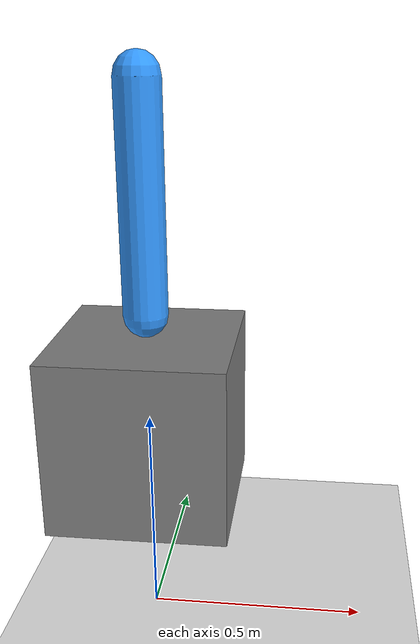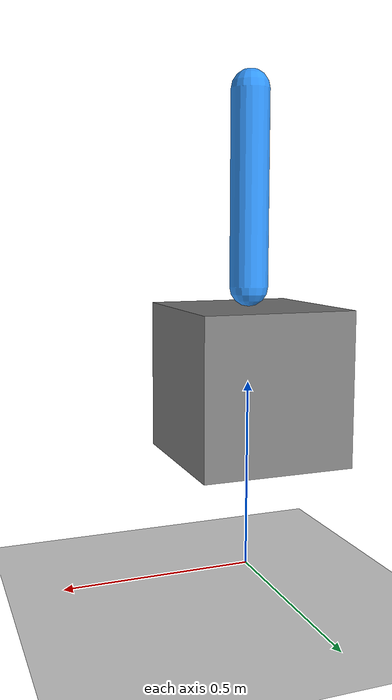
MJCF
<mujoco model="single_link">
  <!-- Assignment 1-5 starter model: one body, one joint, one motor, one sensor -->
  <compiler angle="degree"/>
  <option gravity="0 0 -9.81" timestep="0.002"/>

  <worldbody>
    <light pos="0 0 3" dir="0 0 -1"/>
    <geom type="plane" size="5 5 0.1" rgba="0.9 0.9 0.9 1"/>

    <body name="base" pos="0 0 0.5">
      <geom type="box" size="0.2 0.2 0.2" mass="2" rgba="0.5 0.5 0.5 1"/>
      <joint name="hinge1" type="hinge" axis="0 1 0"/>

      <body name="link1" pos="0 0 0.5">
        <geom type="capsule" fromto="0 0 -0.25 0 0 0.25" size="0.05" mass="1"
              rgba="0.2 0.6 1 1"/>
      </body>
    </body>
  </worldbody>

  <actuator>
    <motor name="motor1" joint="hinge1" gear="50"/>
  </actuator>

  <sensor>
    <jointpos joint="hinge1"/>
    <touch name="link1_touch" site="link1_site"/>
  </sensor>

  <!-- Note: touch sensor needs a site — students add this in assignment 5 -->
</mujoco>
